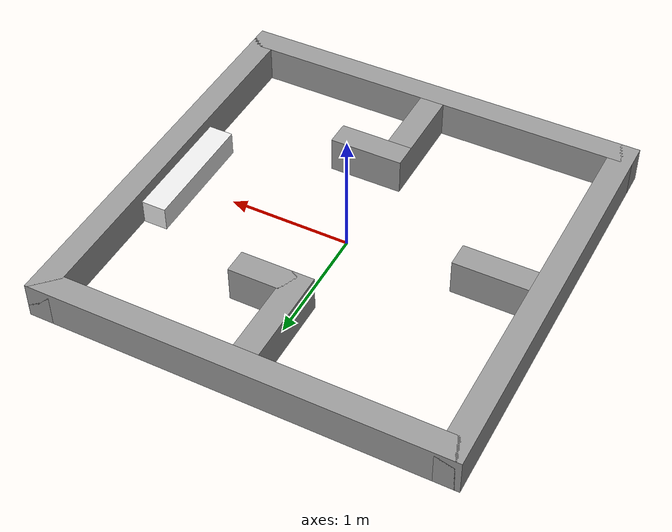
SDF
<?xml version='1.0'?>
<sdf version='1.6'>
  <model name='competition_room_final'>
    <pose frame=''>0 0 0 0 -0 0</pose>
    <link name='Wall_13'>
      <collision name='Wall_13_Collision'>
        <geometry>
          <box>
            <size>3.4 0.2 0.3</size>
          </box>
        </geometry>
        <pose frame=''>0 0 0.15 0 -0 0</pose>
      </collision>
      <visual name='Wall_13_Visual'>
        <pose frame=''>0 0 0.15 0 -0 0</pose>
        <geometry>
          <box>
            <size>3.4 0.2 0.3</size>
          </box>
        </geometry>
        <material>
          <script>
            <uri>file://media/materials/scripts/gazebo.material</uri>
            <name>Gazebo/Grey</name>
          </script>
          <ambient>0 0 0 1</ambient>
        </material>
      </visual>
      <pose frame=''>1.6 0 0 0 0 -1.5708</pose>
    </link>
    <link name='Wall_14'>
      <collision name='Wall_14_Collision'>
        <geometry>
          <box>
            <size>3.4 0.2 0.3</size>
          </box>
        </geometry>
        <pose frame=''>0 0 0.15 0 -0 0</pose>
      </collision>
      <visual name='Wall_14_Visual'>
        <pose frame=''>0 0 0.15 0 -0 0</pose>
        <geometry>
          <box>
            <size>3.4 0.2 0.3</size>
          </box>
        </geometry>
        <material>
          <script>
            <uri>file://media/materials/scripts/gazebo.material</uri>
            <name>Gazebo/Grey</name>
          </script>
          <ambient>0 0 0 1</ambient>
        </material>
      </visual>
      <pose frame=''>0 -1.6 0 0 -0 3.14159</pose>
    </link>
    <link name='Wall_15'>
      <collision name='Wall_15_Collision'>
        <geometry>
          <box>
            <size>3.4 0.2 0.3</size>
          </box>
        </geometry>
        <pose frame=''>0 0 0.15 0 -0 0</pose>
      </collision>
      <visual name='Wall_15_Visual'>
        <pose frame=''>0 0 0.15 0 -0 0</pose>
        <geometry>
          <box>
            <size>3.4 0.2 0.3</size>
          </box>
        </geometry>
        <material>
          <script>
            <uri>file://media/materials/scripts/gazebo.material</uri>
            <name>Gazebo/Grey</name>
          </script>
          <ambient>0 0 0 1</ambient>
        </material>
      </visual>
      <pose frame=''>-1.6 0 0 0 -0 1.5708</pose>
    </link>
    <link name='Wall_16'>
      <collision name='Wall_16_Collision'>
        <geometry>
          <box>
            <size>3.4 0.2 0.3</size>
          </box>
        </geometry>
        <pose frame=''>0 0 0.15 0 -0 0</pose>
      </collision>
      <visual name='Wall_16_Visual'>
        <pose frame=''>0 0 0.15 0 -0 0</pose>
        <geometry>
          <box>
            <size>3.4 0.2 0.3</size>
          </box>
        </geometry>
        <material>
          <script>
            <uri>file://media/materials/scripts/gazebo.material</uri>
            <name>Gazebo/Grey</name>
          </script>
          <ambient>0 0 0 1</ambient>
        </material>
      </visual>
      <pose frame=''>0 1.6 0 0 -0 0</pose>
    </link>
    <link name='Wall_18'>
      <collision name='Wall_18_Collision'>
        <geometry>
          <box>
            <size>1 0.2 0.2</size>
          </box>
        </geometry>
        <pose frame=''>0 0 0.1 0 -0 0</pose>
      </collision>
      <visual name='Wall_18_Visual'>
        <pose frame=''>0 0 0.1 0 -0 0</pose>
        <geometry>
          <box>
            <size>1 0.2 0.2</size>
          </box>
        </geometry>
        <material>
          <script>
            <uri>file://media/materials/scripts/gazebo.material</uri>
            <name>Gazebo/White</name>
          </script>
          <ambient>0 0 0 1</ambient>
        </material>
      </visual>
      <pose frame=''>1.4 0 0 0 0 -1.5708</pose>
    </link>
    <link name='Wall_20'>
      <collision name='Wall_20_Collision'>
        <geometry>
          <box>
            <size>0.8 0.2 0.3</size>
          </box>
        </geometry>
        <pose frame=''>0 0 0.15 0 -0 0</pose>
      </collision>
      <visual name='Wall_20_Visual'>
        <pose frame=''>0 0 0.15 0 -0 0</pose>
        <geometry>
          <box>
            <size>0.8 0.2 0.3</size>
          </box>
        </geometry>
        <material>
          <script>
            <uri>file://media/materials/scripts/gazebo.material</uri>
            <name>Gazebo/Grey</name>
          </script>
          <ambient>0 0 0 1</ambient>
        </material>
      </visual>
      <pose frame=''>0 1.1 0 0 0 -1.5708</pose>
    </link>
    <link name='Wall_21'>
      <collision name='Wall_21_Collision'>
        <geometry>
          <box>
            <size>0.6 0.2 0.3</size>
          </box>
        </geometry>
        <pose frame=''>0 0 0.15 0 -0 0</pose>
      </collision>
      <visual name='Wall_21_Visual'>
        <pose frame=''>0 0 0.15 0 -0 0</pose>
        <geometry>
          <box>
            <size>0.6 0.2 0.3</size>
          </box>
        </geometry>
        <material>
          <script>
            <uri>file://media/materials/scripts/gazebo.material</uri>
            <name>Gazebo/Grey</name>
          </script>
          <ambient>0 0 0 1</ambient>
        </material>
      </visual>
      <pose frame=''>0.2 0.8 0 0 -0 0</pose>
    </link>
    <link name='Wall_23'>
      <collision name='Wall_23_Collision'>
        <geometry>
          <box>
            <size>0.8 0.2 0.3</size>
          </box>
        </geometry>
        <pose frame=''>0 0 0.15 0 -0 0</pose>
      </collision>
      <visual name='Wall_23_Visual'>
        <pose frame=''>0 0 0.15 0 -0 0</pose>
        <geometry>
          <box>
            <size>0.8 0.2 0.3</size>
          </box>
        </geometry>
        <material>
          <script>
            <uri>file://media/materials/scripts/gazebo.material</uri>
            <name>Gazebo/Grey</name>
          </script>
          <ambient>0 0 0 1</ambient>
        </material>
      </visual>
      <pose frame=''>0 -1.1 0 0 -0 1.5708</pose>
    </link>
    <link name='Wall_24'>
      <collision name='Wall_24_Collision'>
        <geometry>
          <box>
            <size>0.6 0.2 0.3</size>
          </box>
        </geometry>
        <pose frame=''>0 0 0.15 0 -0 0</pose>
      </collision>
      <visual name='Wall_24_Visual'>
        <pose frame=''>0 0 0.15 0 -0 0</pose>
        <geometry>
          <box>
            <size>0.6 0.2 0.3</size>
          </box>
        </geometry>
        <material>
          <script>
            <uri>file://media/materials/scripts/gazebo.material</uri>
            <name>Gazebo/Grey</name>
          </script>
          <ambient>0 0 0 1</ambient>
        </material>
      </visual>
      <pose frame=''>0.2 -0.8 0 0 -0 0</pose>
    </link>
    <link name='Wall_26'>
      <collision name='Wall_26_Collision'>
        <geometry>
          <box>
            <size>0.6 0.2 0.3</size>
          </box>
        </geometry>
        <pose frame=''>0 0 0.15 0 -0 0</pose>
      </collision>
      <visual name='Wall_26_Visual'>
        <pose frame=''>0 0 0.15 0 -0 0</pose>
        <geometry>
          <box>
            <size>0.6 0.2 0.3</size>
          </box>
        </geometry>
        <material>
          <script>
            <uri>file://media/materials/scripts/gazebo.material</uri>
            <name>Gazebo/Grey</name>
          </script>
          <ambient>0 0 0 1</ambient>
        </material>
      </visual>
      <pose frame=''>-1.2 0 0 0 -0 0</pose>
    </link>
    <static>1</static>
  </model>
</sdf>
